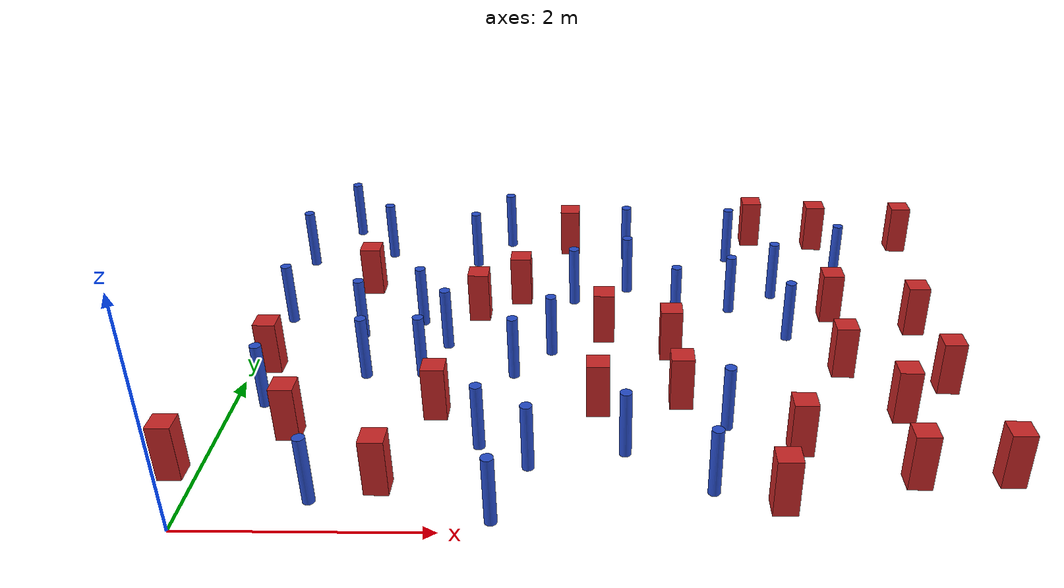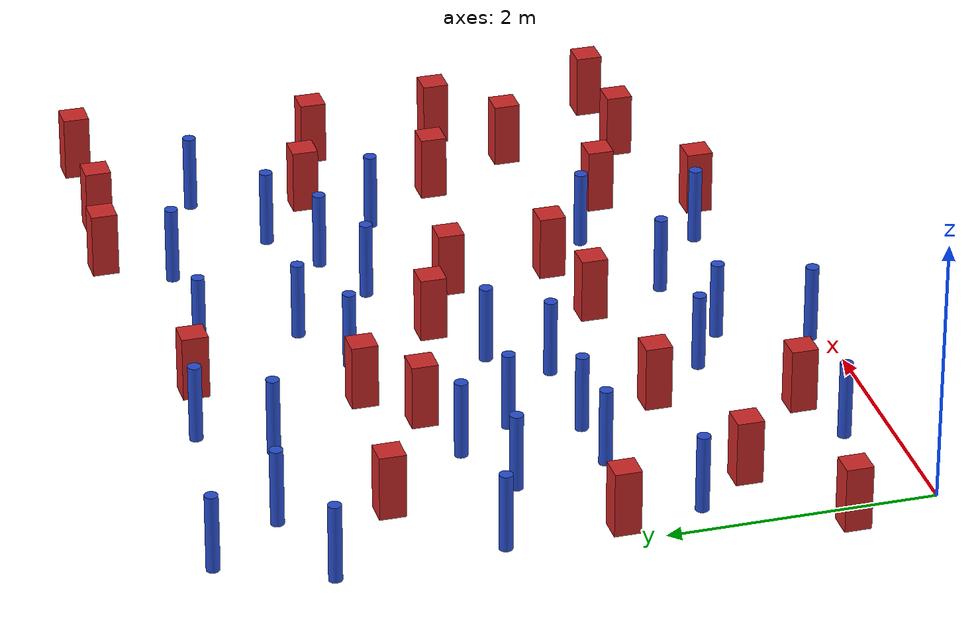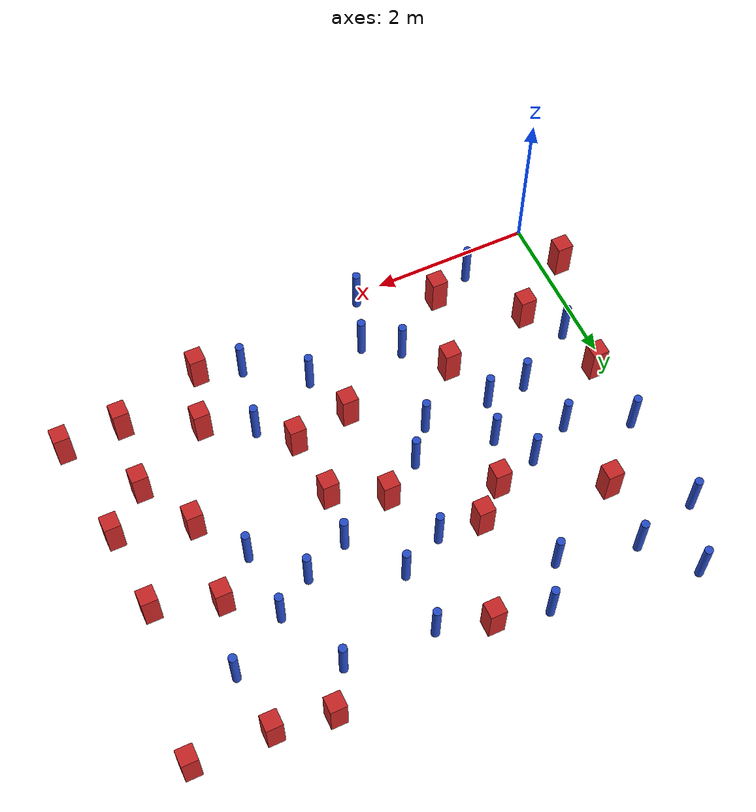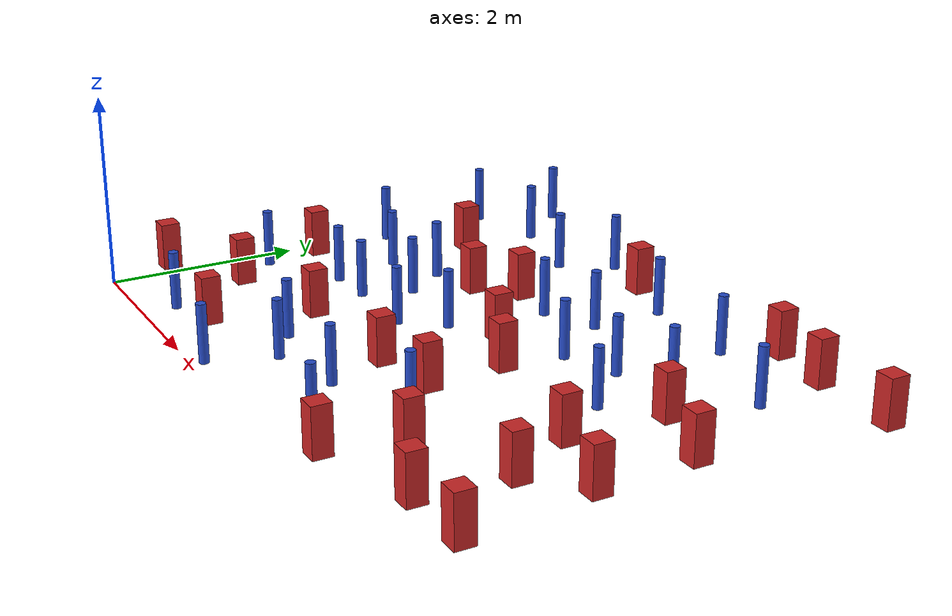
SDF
<sdf version="1.6">
 <model name="dense_33">
  <model name="square_post_obstacle0">
   <static>true</static>
   <pose>3.83624007222 2.51242688066 8.22691968438e-08 7.2212513382e-06 -7.54495500217e-07 2.29674213826e-05</pose>
   <link name="link">
    <pose>0 0 0.25 0 -0 0</pose>
    <inertial>
     <mass>100</mass>
     <inertia>
      <ixx>0.166667</ixx>
      <ixy>0</ixy>
      <ixz>0</ixz>
      <iyy>0.166667</iyy>
      <iyz>0</iyz>
      <izz>0.166667</izz>
     </inertia>
    </inertial>
    <collision name="collision"><geometry><box><size>.2 .2 .5</size></box></geometry></collision>
    <visual name="visual">
     <geometry><box><size>.2 .2 .5</size></box></geometry>
     <material>
      <script><name>Gazebo/Red</name><uri>file://media/materials/scripts/gazebo.material</uri></script>
     </material>
    </visual>
   </link>
  </model>
  <model name="square_post_obstacle2">
   <static>true</static>
   <pose>5.382815112 2.22522824394 8.22691968438e-08 7.2212513382e-06 -7.54495500217e-07 2.29674213826e-05</pose>
   <link name="link">
    <pose>0 0 0.25 0 -0 0</pose>
    <inertial>
     <mass>100</mass>
     <inertia>
      <ixx>0.166667</ixx>
      <ixy>0</ixy>
      <ixz>0</ixz>
      <iyy>0.166667</iyy>
      <iyz>0</iyz>
      <izz>0.166667</izz>
     </inertia>
    </inertial>
    <collision name="collision"><geometry><box><size>.2 .2 .5</size></box></geometry></collision>
    <visual name="visual">
     <geometry><box><size>.2 .2 .5</size></box></geometry>
     <material>
      <script><name>Gazebo/Red</name><uri>file://media/materials/scripts/gazebo.material</uri></script>
     </material>
    </visual>
   </link>
  </model>
  <model name="pole_obstacle2">
   <static>true</static>
   <pose>4.54405223998 4.48123757993 2.88873142074e-08 -9.90536690842e-09 4.60219948965e-07 -1.20965994976e-07</pose>
   <link name="link">
    <pose>0 0 0.3 0 -0 0</pose>
    <inertial>
     <mass>1</mass>
     <inertia><ixx>0.145833</ixx><ixy>0</ixy><ixz>0</ixz><iyy>0.145833</iyy><iyz>0</iyz><izz>0.125</izz></inertia>
    </inertial>
    <collision name="collision">
     <geometry><cylinder><radius>0.05</radius><length>.6</length></cylinder></geometry>
    </collision>
    <visual name="visual">
     <geometry><cylinder><radius>0.05</radius><length>.6</length></cylinder></geometry>
     <material>
      <script><name>Gazebo/Blue</name><uri>file://media/materials/scripts/gazebo.material</uri></script>
     </material>
    </visual>
   </link>
  </model>
  <model name="square_post_obstacle19">
   <static>true</static>
   <pose>4.84791716677 4.95255068701 8.22691968438e-08 7.2212513382e-06 -7.54495500217e-07 2.29674213826e-05</pose>
   <link name="link">
    <pose>0 0 0.25 0 -0 0</pose>
    <inertial>
     <mass>100</mass>
     <inertia>
      <ixx>0.166667</ixx>
      <ixy>0</ixy>
      <ixz>0</ixz>
      <iyy>0.166667</iyy>
      <iyz>0</iyz>
      <izz>0.166667</izz>
     </inertia>
    </inertial>
    <collision name="collision"><geometry><box><size>.2 .2 .5</size></box></geometry></collision>
    <visual name="visual">
     <geometry><box><size>.2 .2 .5</size></box></geometry>
     <material>
      <script><name>Gazebo/Red</name><uri>file://media/materials/scripts/gazebo.material</uri></script>
     </material>
    </visual>
   </link>
  </model>
  <model name="pole_obstacle12">
   <static>true</static>
   <pose>2.40385313394 2.13299145493 2.88873142074e-08 -9.90536690232e-09 4.6021994898e-07 -1.20965994968e-07</pose>
   <link name="link">
    <pose>0 0 0.3 0 -0 0</pose>
    <inertial>
     <mass>1</mass>
     <inertia><ixx>0.145833</ixx><ixy>0</ixy><ixz>0</ixz><iyy>0.145833</iyy><iyz>0</iyz><izz>0.125</izz></inertia>
    </inertial>
    <collision name="collision">
     <geometry><cylinder><radius>0.05</radius><length>.6</length></cylinder></geometry>
    </collision>
    <visual name="visual">
     <geometry><cylinder><radius>0.05</radius><length>.6</length></cylinder></geometry>
     <material>
      <script><name>Gazebo/Blue</name><uri>file://media/materials/scripts/gazebo.material</uri></script>
     </material>
    </visual>
   </link>
  </model>
  <model name="pole_obstacle23">
   <static>true</static>
   <pose>1.74170460834 2.64435976566 2.88873142074e-08 -9.90536689791e-09 4.6021994899e-07 -1.20965994959e-07</pose>
   <link name="link">
    <pose>0 0 0.3 0 -0 0</pose>
    <inertial>
     <mass>1</mass>
     <inertia><ixx>0.145833</ixx><ixy>0</ixy><ixz>0</ixz><iyy>0.145833</iyy><iyz>0</iyz><izz>0.125</izz></inertia>
    </inertial>
    <collision name="collision">
     <geometry><cylinder><radius>0.05</radius><length>.6</length></cylinder></geometry>
    </collision>
    <visual name="visual">
     <geometry><cylinder><radius>0.05</radius><length>.6</length></cylinder></geometry>
     <material>
      <script><name>Gazebo/Blue</name><uri>file://media/materials/scripts/gazebo.material</uri></script>
     </material>
    </visual>
   </link>
  </model>
  <model name="pole_obstacle35">
   <static>true</static>
   <pose>0.270229595099 1.65175155978 2.88873142074e-08 -9.90536689709e-09 4.60219948992e-07 -1.20965994957e-07</pose>
   <link name="link">
    <pose>0 0 0.3 0 -0 0</pose>
    <inertial>
     <mass>1</mass>
     <inertia><ixx>0.145833</ixx><ixy>0</ixy><ixz>0</ixz><iyy>0.145833</iyy><iyz>0</iyz><izz>0.125</izz></inertia>
    </inertial>
    <collision name="collision">
     <geometry><cylinder><radius>0.05</radius><length>.6</length></cylinder></geometry>
    </collision>
    <visual name="visual">
     <geometry><cylinder><radius>0.05</radius><length>.6</length></cylinder></geometry>
     <material>
      <script><name>Gazebo/Blue</name><uri>file://media/materials/scripts/gazebo.material</uri></script>
     </material>
    </visual>
   </link>
  </model>
  <model name="pole_obstacle36">
   <static>true</static>
   <pose>2.37809489842 0.126536309214 2.88873142074e-08 -9.90536689314e-09 4.60219949002e-07 -1.20965994953e-07</pose>
   <link name="link">
    <pose>0 0 0.3 0 -0 0</pose>
    <inertial>
     <mass>1</mass>
     <inertia><ixx>0.145833</ixx><ixy>0</ixy><ixz>0</ixz><iyy>0.145833</iyy><iyz>0</iyz><izz>0.125</izz></inertia>
    </inertial>
    <collision name="collision">
     <geometry><cylinder><radius>0.05</radius><length>.6</length></cylinder></geometry>
    </collision>
    <visual name="visual">
     <geometry><cylinder><radius>0.05</radius><length>.6</length></cylinder></geometry>
     <material>
      <script><name>Gazebo/Blue</name><uri>file://media/materials/scripts/gazebo.material</uri></script>
     </material>
    </visual>
   </link>
  </model>
  <model name="pole_obstacle42">
   <static>true</static>
   <pose>3.45222762329 4.52914695269 2.88873142074e-08 -9.90536689859e-09 4.60219948989e-07 -1.20965994961e-07</pose>
   <link name="link">
    <pose>0 0 0.3 0 -0 0</pose>
    <inertial>
     <mass>1</mass>
     <inertia><ixx>0.145833</ixx><ixy>0</ixy><ixz>0</ixz><iyy>0.145833</iyy><iyz>0</iyz><izz>0.125</izz></inertia>
    </inertial>
    <collision name="collision">
     <geometry><cylinder><radius>0.05</radius><length>.6</length></cylinder></geometry>
    </collision>
    <visual name="visual">
     <geometry><cylinder><radius>0.05</radius><length>.6</length></cylinder></geometry>
     <material>
      <script><name>Gazebo/Blue</name><uri>file://media/materials/scripts/gazebo.material</uri></script>
     </material>
    </visual>
   </link>
  </model>
  <model name="pole_obstacle49">
   <static>true</static>
   <pose>4.96978306461 2.81869666789 2.88873142074e-08 -9.90536690245e-09 4.6021994898e-07 -1.20965994966e-07</pose>
   <link name="link">
    <pose>0 0 0.3 0 -0 0</pose>
    <inertial>
     <mass>1</mass>
     <inertia><ixx>0.145833</ixx><ixy>0</ixy><ixz>0</ixz><iyy>0.145833</iyy><iyz>0</iyz><izz>0.125</izz></inertia>
    </inertial>
    <collision name="collision">
     <geometry><cylinder><radius>0.05</radius><length>.6</length></cylinder></geometry>
    </collision>
    <visual name="visual">
     <geometry><cylinder><radius>0.05</radius><length>.6</length></cylinder></geometry>
     <material>
      <script><name>Gazebo/Blue</name><uri>file://media/materials/scripts/gazebo.material</uri></script>
     </material>
    </visual>
   </link>
  </model>
  <model name="square_post_obstacle51">
   <static>true</static>
   <pose>3.16966110681 1.5908703172 8.22691968438e-08 7.2212513382e-06 -7.54495500217e-07 2.29674213826e-05</pose>
   <link name="link">
    <pose>0 0 0.25 0 -0 0</pose>
    <inertial>
     <mass>100</mass>
     <inertia>
      <ixx>0.166667</ixx>
      <ixy>0</ixy>
      <ixz>0</ixz>
      <iyy>0.166667</iyy>
      <iyz>0</iyz>
      <izz>0.166667</izz>
     </inertia>
    </inertial>
    <collision name="collision"><geometry><box><size>.2 .2 .5</size></box></geometry></collision>
    <visual name="visual">
     <geometry><box><size>.2 .2 .5</size></box></geometry>
     <material>
      <script><name>Gazebo/Red</name><uri>file://media/materials/scripts/gazebo.material</uri></script>
     </material>
    </visual>
   </link>
  </model>
  <model name="square_post_obstacle59">
   <static>true</static>
   <pose>2.38153384503 3.5671006401 8.22691968438e-08 7.2212513382e-06 -7.54495500217e-07 2.29674213826e-05</pose>
   <link name="link">
    <pose>0 0 0.25 0 -0 0</pose>
    <inertial>
     <mass>100</mass>
     <inertia>
      <ixx>0.166667</ixx>
      <ixy>0</ixy>
      <ixz>0</ixz>
      <iyy>0.166667</iyy>
      <iyz>0</iyz>
      <izz>0.166667</izz>
     </inertia>
    </inertial>
    <collision name="collision"><geometry><box><size>.2 .2 .5</size></box></geometry></collision>
    <visual name="visual">
     <geometry><box><size>.2 .2 .5</size></box></geometry>
     <material>
      <script><name>Gazebo/Red</name><uri>file://media/materials/scripts/gazebo.material</uri></script>
     </material>
    </visual>
   </link>
  </model>
  <model name="square_post_obstacle67">
   <static>true</static>
   <pose>0.180488321997 2.25615456702 8.22691968438e-08 7.2212513382e-06 -7.54495500217e-07 2.29674213826e-05</pose>
   <link name="link">
    <pose>0 0 0.25 0 -0 0</pose>
    <inertial>
     <mass>100</mass>
     <inertia>
      <ixx>0.166667</ixx>
      <ixy>0</ixy>
      <ixz>0</ixz>
      <iyy>0.166667</iyy>
      <iyz>0</iyz>
      <izz>0.166667</izz>
     </inertia>
    </inertial>
    <collision name="collision"><geometry><box><size>.2 .2 .5</size></box></geometry></collision>
    <visual name="visual">
     <geometry><box><size>.2 .2 .5</size></box></geometry>
     <material>
      <script><name>Gazebo/Red</name><uri>file://media/materials/scripts/gazebo.material</uri></script>
     </material>
    </visual>
   </link>
  </model>
  <model name="square_post_obstacle68">
   <static>true</static>
   <pose>5.53330720804 4.85079457492 8.22691968438e-08 7.2212513382e-06 -7.54495500217e-07 2.29674213826e-05</pose>
   <link name="link">
    <pose>0 0 0.25 0 -0 0</pose>
    <inertial>
     <mass>100</mass>
     <inertia>
      <ixx>0.166667</ixx>
      <ixy>0</ixy>
      <ixz>0</ixz>
      <iyy>0.166667</iyy>
      <iyz>0</iyz>
      <izz>0.166667</izz>
     </inertia>
    </inertial>
    <collision name="collision"><geometry><box><size>.2 .2 .5</size></box></geometry></collision>
    <visual name="visual">
     <geometry><box><size>.2 .2 .5</size></box></geometry>
     <material>
      <script><name>Gazebo/Red</name><uri>file://media/materials/scripts/gazebo.material</uri></script>
     </material>
    </visual>
   </link>
  </model>
  <model name="pole_obstacle73">
   <static>true</static>
   <pose>4.07469864643 0.484362611027 2.88873142074e-08 -9.90536689483e-09 4.60219948998e-07 -1.20965994956e-07</pose>
   <link name="link">
    <pose>0 0 0.3 0 -0 0</pose>
    <inertial>
     <mass>1</mass>
     <inertia><ixx>0.145833</ixx><ixy>0</ixy><ixz>0</ixz><iyy>0.145833</iyy><iyz>0</iyz><izz>0.125</izz></inertia>
    </inertial>
    <collision name="collision">
     <geometry><cylinder><radius>0.05</radius><length>.6</length></cylinder></geometry>
    </collision>
    <visual name="visual">
     <geometry><cylinder><radius>0.05</radius><length>.6</length></cylinder></geometry>
     <material>
      <script><name>Gazebo/Blue</name><uri>file://media/materials/scripts/gazebo.material</uri></script>
     </material>
    </visual>
   </link>
  </model>
  <model name="square_post_obstacle77">
   <static>true</static>
   <pose>1.78577934854 1.52558588114 8.22691968438e-08 7.2212513382e-06 -7.54495500217e-07 2.29674213826e-05</pose>
   <link name="link">
    <pose>0 0 0.25 0 -0 0</pose>
    <inertial>
     <mass>100</mass>
     <inertia>
      <ixx>0.166667</ixx>
      <ixy>0</ixy>
      <ixz>0</ixz>
      <iyy>0.166667</iyy>
      <iyz>0</iyz>
      <izz>0.166667</izz>
     </inertia>
    </inertial>
    <collision name="collision"><geometry><box><size>.2 .2 .5</size></box></geometry></collision>
    <visual name="visual">
     <geometry><box><size>.2 .2 .5</size></box></geometry>
     <material>
      <script><name>Gazebo/Red</name><uri>file://media/materials/scripts/gazebo.material</uri></script>
     </material>
    </visual>
   </link>
  </model>
  <model name="pole_obstacle81">
   <static>true</static>
   <pose>0.903990162992 2.82774440364 2.88873142074e-08 -9.90536689636e-09 4.60219948994e-07 -1.20965994958e-07</pose>
   <link name="link">
    <pose>0 0 0.3 0 -0 0</pose>
    <inertial>
     <mass>1</mass>
     <inertia><ixx>0.145833</ixx><ixy>0</ixy><ixz>0</ixz><iyy>0.145833</iyy><iyz>0</iyz><izz>0.125</izz></inertia>
    </inertial>
    <collision name="collision">
     <geometry><cylinder><radius>0.05</radius><length>.6</length></cylinder></geometry>
    </collision>
    <visual name="visual">
     <geometry><cylinder><radius>0.05</radius><length>.6</length></cylinder></geometry>
     <material>
      <script><name>Gazebo/Blue</name><uri>file://media/materials/scripts/gazebo.material</uri></script>
     </material>
    </visual>
   </link>
  </model>
  <model name="pole_obstacle86">
   <static>true</static>
   <pose>2.72855945239 2.5316916202 2.88873142074e-08 -9.90536690232e-09 4.6021994898e-07 -1.20965994968e-07</pose>
   <link name="link">
    <pose>0 0 0.3 0 -0 0</pose>
    <inertial>
     <mass>1</mass>
     <inertia><ixx>0.145833</ixx><ixy>0</ixy><ixz>0</ixz><iyy>0.145833</iyy><iyz>0</iyz><izz>0.125</izz></inertia>
    </inertial>
    <collision name="collision">
     <geometry><cylinder><radius>0.05</radius><length>.6</length></cylinder></geometry>
    </collision>
    <visual name="visual">
     <geometry><cylinder><radius>0.05</radius><length>.6</length></cylinder></geometry>
     <material>
      <script><name>Gazebo/Blue</name><uri>file://media/materials/scripts/gazebo.material</uri></script>
     </material>
    </visual>
   </link>
  </model>
  <model name="square_post_obstacle87">
   <static>true</static>
   <pose>0.839269014489 3.77222593982 8.22691968438e-08 7.2212513382e-06 -7.54495500217e-07 2.29674213826e-05</pose>
   <link name="link">
    <pose>0 0 0.25 0 -0 0</pose>
    <inertial>
     <mass>100</mass>
     <inertia>
      <ixx>0.166667</ixx>
      <ixy>0</ixy>
      <ixz>0</ixz>
      <iyy>0.166667</iyy>
      <iyz>0</iyz>
      <izz>0.166667</izz>
     </inertia>
    </inertial>
    <collision name="collision"><geometry><box><size>.2 .2 .5</size></box></geometry></collision>
    <visual name="visual">
     <geometry><box><size>.2 .2 .5</size></box></geometry>
     <material>
      <script><name>Gazebo/Red</name><uri>file://media/materials/scripts/gazebo.material</uri></script>
     </material>
    </visual>
   </link>
  </model>
  <model name="pole_obstacle98">
   <static>true</static>
   <pose>4.92634855674 3.65364517422 2.88873142074e-08 -9.90536690245e-09 4.6021994898e-07 -1.20965994966e-07</pose>
   <link name="link">
    <pose>0 0 0.3 0 -0 0</pose>
    <inertial>
     <mass>1</mass>
     <inertia><ixx>0.145833</ixx><ixy>0</ixy><ixz>0</ixz><iyy>0.145833</iyy><iyz>0</iyz><izz>0.125</izz></inertia>
    </inertial>
    <collision name="collision">
     <geometry><cylinder><radius>0.05</radius><length>.6</length></cylinder></geometry>
    </collision>
    <visual name="visual">
     <geometry><cylinder><radius>0.05</radius><length>.6</length></cylinder></geometry>
     <material>
      <script><name>Gazebo/Blue</name><uri>file://media/materials/scripts/gazebo.material</uri></script>
     </material>
    </visual>
   </link>
  </model>
  <model name="pole_obstacle103">
   <static>true</static>
   <pose>1.84891390113 4.35850790932 2.88873142074e-08 -9.90536689852e-09 4.60219948989e-07 -1.2096599496e-07</pose>
   <link name="link">
    <pose>0 0 0.3 0 -0 0</pose>
    <inertial>
     <mass>1</mass>
     <inertia><ixx>0.145833</ixx><ixy>0</ixy><ixz>0</ixz><iyy>0.145833</iyy><iyz>0</iyz><izz>0.125</izz></inertia>
    </inertial>
    <collision name="collision">
     <geometry><cylinder><radius>0.05</radius><length>.6</length></cylinder></geometry>
    </collision>
    <visual name="visual">
     <geometry><cylinder><radius>0.05</radius><length>.6</length></cylinder></geometry>
     <material>
      <script><name>Gazebo/Blue</name><uri>file://media/materials/scripts/gazebo.material</uri></script>
     </material>
    </visual>
   </link>
  </model>
  <model name="pole_obstacle108">
   <static>true</static>
   <pose>0.42959844071 5.14114575836 2.88873142074e-08 -9.90536689683e-09 4.60219948993e-07 -1.20965994957e-07</pose>
   <link name="link">
    <pose>0 0 0.3 0 -0 0</pose>
    <inertial>
     <mass>1</mass>
     <inertia><ixx>0.145833</ixx><ixy>0</ixy><ixz>0</ixz><iyy>0.145833</iyy><iyz>0</iyz><izz>0.125</izz></inertia>
    </inertial>
    <collision name="collision">
     <geometry><cylinder><radius>0.05</radius><length>.6</length></cylinder></geometry>
    </collision>
    <visual name="visual">
     <geometry><cylinder><radius>0.05</radius><length>.6</length></cylinder></geometry>
     <material>
      <script><name>Gazebo/Blue</name><uri>file://media/materials/scripts/gazebo.material</uri></script>
     </material>
    </visual>
   </link>
  </model>
  <model name="square_post_obstacle97">
   <static>true</static>
   <pose>3.88833576552 1.70321799984 8.22691968438e-08 7.2212513382e-06 -7.54495500217e-07 2.29674213826e-05</pose>
   <link name="link">
    <pose>0 0 0.25 0 -0 0</pose>
    <inertial>
     <mass>100</mass>
     <inertia>
      <ixx>0.166667</ixx>
      <ixy>0</ixy>
      <ixz>0</ixz>
      <iyy>0.166667</iyy>
      <iyz>0</iyz>
      <izz>0.166667</izz>
     </inertia>
    </inertial>
    <collision name="collision"><geometry><box><size>.2 .2 .5</size></box></geometry></collision>
    <visual name="visual">
     <geometry><box><size>.2 .2 .5</size></box></geometry>
     <material>
      <script><name>Gazebo/Red</name><uri>file://media/materials/scripts/gazebo.material</uri></script>
     </material>
    </visual>
   </link>
  </model>
  <model name="pole_obstacle110">
   <static>true</static>
   <pose>3.91531271678 3.13103008259 2.88873142074e-08 -9.90536690232e-09 4.6021994898e-07 -1.20965994968e-07</pose>
   <link name="link">
    <pose>0 0 0.3 0 -0 0</pose>
    <inertial>
     <mass>1</mass>
     <inertia><ixx>0.145833</ixx><ixy>0</ixy><ixz>0</ixz><iyy>0.145833</iyy><iyz>0</iyz><izz>0.125</izz></inertia>
    </inertial>
    <collision name="collision">
     <geometry><cylinder><radius>0.05</radius><length>.6</length></cylinder></geometry>
    </collision>
    <visual name="visual">
     <geometry><cylinder><radius>0.05</radius><length>.6</length></cylinder></geometry>
     <material>
      <script><name>Gazebo/Blue</name><uri>file://media/materials/scripts/gazebo.material</uri></script>
     </material>
    </visual>
   </link>
  </model>
  <model name="pole_obstacle117">
   <static>true</static>
   <pose>1.44780550081 3.08012326872 2.88873142074e-08 -9.90536689791e-09 4.6021994899e-07 -1.20965994959e-07</pose>
   <link name="link">
    <pose>0 0 0.3 0 -0 0</pose>
    <inertial>
     <mass>1</mass>
     <inertia><ixx>0.145833</ixx><ixy>0</ixy><ixz>0</ixz><iyy>0.145833</iyy><iyz>0</iyz><izz>0.125</izz></inertia>
    </inertial>
    <collision name="collision">
     <geometry><cylinder><radius>0.05</radius><length>.6</length></cylinder></geometry>
    </collision>
    <visual name="visual">
     <geometry><cylinder><radius>0.05</radius><length>.6</length></cylinder></geometry>
     <material>
      <script><name>Gazebo/Blue</name><uri>file://media/materials/scripts/gazebo.material</uri></script>
     </material>
    </visual>
   </link>
  </model>
  <model name="square_post_obstacle113">
   <static>true</static>
   <pose>6.26256643777 1.96622092662 8.22691968438e-08 7.2212513382e-06 -7.54495500217e-07 2.29674213826e-05</pose>
   <link name="link">
    <pose>0 0 0.25 0 -0 0</pose>
    <inertial>
     <mass>100</mass>
     <inertia>
      <ixx>0.166667</ixx>
      <ixy>0</ixy>
      <ixz>0</ixz>
      <iyy>0.166667</iyy>
      <iyz>0</iyz>
      <izz>0.166667</izz>
     </inertia>
    </inertial>
    <collision name="collision"><geometry><box><size>.2 .2 .5</size></box></geometry></collision>
    <visual name="visual">
     <geometry><box><size>.2 .2 .5</size></box></geometry>
     <material>
      <script><name>Gazebo/Red</name><uri>file://media/materials/scripts/gazebo.material</uri></script>
     </material>
    </visual>
   </link>
  </model>
  <model name="pole_obstacle128">
   <static>true</static>
   <pose>5.64203505612 4.08700018968 2.88873142074e-08 -9.90536690842e-09 4.60219948965e-07 -1.20965994976e-07</pose>
   <link name="link">
    <pose>0 0 0.3 0 -0 0</pose>
    <inertial>
     <mass>1</mass>
     <inertia><ixx>0.145833</ixx><ixy>0</ixy><ixz>0</ixz><iyy>0.145833</iyy><iyz>0</iyz><izz>0.125</izz></inertia>
    </inertial>
    <collision name="collision">
     <geometry><cylinder><radius>0.05</radius><length>.6</length></cylinder></geometry>
    </collision>
    <visual name="visual">
     <geometry><cylinder><radius>0.05</radius><length>.6</length></cylinder></geometry>
     <material>
      <script><name>Gazebo/Blue</name><uri>file://media/materials/scripts/gazebo.material</uri></script>
     </material>
    </visual>
   </link>
  </model>
  <model name="square_post_obstacle114">
   <static>true</static>
   <pose>6.46413071267 4.8251905256 8.22691968438e-08 7.2212513382e-06 -7.54495500217e-07 2.29674213826e-05</pose>
   <link name="link">
    <pose>0 0 0.25 0 -0 0</pose>
    <inertial>
     <mass>100</mass>
     <inertia>
      <ixx>0.166667</ixx>
      <ixy>0</ixy>
      <ixz>0</ixz>
      <iyy>0.166667</iyy>
      <iyz>0</iyz>
      <izz>0.166667</izz>
     </inertia>
    </inertial>
    <collision name="collision"><geometry><box><size>.2 .2 .5</size></box></geometry></collision>
    <visual name="visual">
     <geometry><box><size>.2 .2 .5</size></box></geometry>
     <material>
      <script><name>Gazebo/Red</name><uri>file://media/materials/scripts/gazebo.material</uri></script>
     </material>
    </visual>
   </link>
  </model>
  <model name="pole_obstacle130">
   <static>true</static>
   <pose>2.19633119858 1.05908401135 2.88873142074e-08 -9.90536689395e-09 4.60219949e-07 -1.20965994953e-07</pose>
   <link name="link">
    <pose>0 0 0.3 0 -0 0</pose>
    <inertial>
     <mass>1</mass>
     <inertia><ixx>0.145833</ixx><ixy>0</ixy><ixz>0</ixz><iyy>0.145833</iyy><iyz>0</iyz><izz>0.125</izz></inertia>
    </inertial>
    <collision name="collision">
     <geometry><cylinder><radius>0.05</radius><length>.6</length></cylinder></geometry>
    </collision>
    <visual name="visual">
     <geometry><cylinder><radius>0.05</radius><length>.6</length></cylinder></geometry>
     <material>
      <script><name>Gazebo/Blue</name><uri>file://media/materials/scripts/gazebo.material</uri></script>
     </material>
    </visual>
   </link>
  </model>
  <model name="square_post_obstacle115">
   <static>true</static>
   <pose>6.20726638023 2.98246089201 8.22691968438e-08 7.2212513382e-06 -7.54495500217e-07 2.29674213826e-05</pose>
   <link name="link">
    <pose>0 0 0.25 0 -0 0</pose>
    <inertial>
     <mass>100</mass>
     <inertia>
      <ixx>0.166667</ixx>
      <ixy>0</ixy>
      <ixz>0</ixz>
      <iyy>0.166667</iyy>
      <iyz>0</iyz>
      <izz>0.166667</izz>
     </inertia>
    </inertial>
    <collision name="collision"><geometry><box><size>.2 .2 .5</size></box></geometry></collision>
    <visual name="visual">
     <geometry><box><size>.2 .2 .5</size></box></geometry>
     <material>
      <script><name>Gazebo/Red</name><uri>file://media/materials/scripts/gazebo.material</uri></script>
     </material>
    </visual>
   </link>
  </model>
  <model name="square_post_obstacle134">
   <static>true</static>
   <pose>4.82399494446 1.03815677405 8.22691968438e-08 7.2212513382e-06 -7.54495500217e-07 2.29674213826e-05</pose>
   <link name="link">
    <pose>0 0 0.25 0 -0 0</pose>
    <inertial>
     <mass>100</mass>
     <inertia>
      <ixx>0.166667</ixx>
      <ixy>0</ixy>
      <ixz>0</ixz>
      <iyy>0.166667</iyy>
      <iyz>0</iyz>
      <izz>0.166667</izz>
     </inertia>
    </inertial>
    <collision name="collision"><geometry><box><size>.2 .2 .5</size></box></geometry></collision>
    <visual name="visual">
     <geometry><box><size>.2 .2 .5</size></box></geometry>
     <material>
      <script><name>Gazebo/Red</name><uri>file://media/materials/scripts/gazebo.material</uri></script>
     </material>
    </visual>
   </link>
  </model>
  <model name="pole_obstacle145">
   <static>true</static>
   <pose>3.45163261709 3.77494347246 2.88873142074e-08 -9.90536690232e-09 4.6021994898e-07 -1.20965994968e-07</pose>
   <link name="link">
    <pose>0 0 0.3 0 -0 0</pose>
    <inertial>
     <mass>1</mass>
     <inertia><ixx>0.145833</ixx><ixy>0</ixy><ixz>0</ixz><iyy>0.145833</iyy><iyz>0</iyz><izz>0.125</izz></inertia>
    </inertial>
    <collision name="collision">
     <geometry><cylinder><radius>0.05</radius><length>.6</length></cylinder></geometry>
    </collision>
    <visual name="visual">
     <geometry><cylinder><radius>0.05</radius><length>.6</length></cylinder></geometry>
     <material>
      <script><name>Gazebo/Blue</name><uri>file://media/materials/scripts/gazebo.material</uri></script>
     </material>
    </visual>
   </link>
  </model>
  <model name="pole_obstacle156">
   <static>true</static>
   <pose>0.146905843867 3.12225252958 2.88873142074e-08 -9.90536692387e-09 4.60219948929e-07 -1.20965994988e-07</pose>
   <link name="link">
    <pose>0 0 0.3 0 -0 0</pose>
    <inertial>
     <mass>1</mass>
     <inertia><ixx>0.145833</ixx><ixy>0</ixy><ixz>0</ixz><iyy>0.145833</iyy><iyz>0</iyz><izz>0.125</izz></inertia>
    </inertial>
    <collision name="collision">
     <geometry><cylinder><radius>0.05</radius><length>.6</length></cylinder></geometry>
    </collision>
    <visual name="visual">
     <geometry><cylinder><radius>0.05</radius><length>.6</length></cylinder></geometry>
     <material>
      <script><name>Gazebo/Blue</name><uri>file://media/materials/scripts/gazebo.material</uri></script>
     </material>
    </visual>
   </link>
  </model>
  <model name="square_post_obstacle149">
   <static>true</static>
   <pose>4.58742224713 0.311804804169 8.22691968438e-08 7.2212513382e-06 -7.54495500217e-07 2.29674213826e-05</pose>
   <link name="link">
    <pose>0 0 0.25 0 -0 0</pose>
    <inertial>
     <mass>100</mass>
     <inertia>
      <ixx>0.166667</ixx>
      <ixy>0</ixy>
      <ixz>0</ixz>
      <iyy>0.166667</iyy>
      <iyz>0</iyz>
      <izz>0.166667</izz>
     </inertia>
    </inertial>
    <collision name="collision"><geometry><box><size>.2 .2 .5</size></box></geometry></collision>
    <visual name="visual">
     <geometry><box><size>.2 .2 .5</size></box></geometry>
     <material>
      <script><name>Gazebo/Red</name><uri>file://media/materials/scripts/gazebo.material</uri></script>
     </material>
    </visual>
   </link>
  </model>
  <model name="square_post_obstacle153">
   <static>true</static>
   <pose>1.46635950178 0.523437475604 8.22691968438e-08 7.22125133819e-06 -7.54495500217e-07 2.29674213826e-05</pose>
   <link name="link">
    <pose>0 0 0.25 0 -0 0</pose>
    <inertial>
     <mass>100</mass>
     <inertia>
      <ixx>0.166667</ixx>
      <ixy>0</ixy>
      <ixz>0</ixz>
      <iyy>0.166667</iyy>
      <iyz>0</iyz>
      <izz>0.166667</izz>
     </inertia>
    </inertial>
    <collision name="collision"><geometry><box><size>.2 .2 .5</size></box></geometry></collision>
    <visual name="visual">
     <geometry><box><size>.2 .2 .5</size></box></geometry>
     <material>
      <script><name>Gazebo/Red</name><uri>file://media/materials/scripts/gazebo.material</uri></script>
     </material>
    </visual>
   </link>
  </model>
  <model name="pole_obstacle162">
   <static>true</static>
   <pose>0.963282266873 0.354120849791 2.88873142074e-08 -9.90536689826e-09 4.6021994899e-07 -1.2096599496e-07</pose>
   <link name="link">
    <pose>0 0 0.3 0 -0 0</pose>
    <inertial>
     <mass>1</mass>
     <inertia><ixx>0.145833</ixx><ixy>0</ixy><ixz>0</ixz><iyy>0.145833</iyy><iyz>0</iyz><izz>0.125</izz></inertia>
    </inertial>
    <collision name="collision">
     <geometry><cylinder><radius>0.05</radius><length>.6</length></cylinder></geometry>
    </collision>
    <visual name="visual">
     <geometry><cylinder><radius>0.05</radius><length>.6</length></cylinder></geometry>
     <material>
      <script><name>Gazebo/Blue</name><uri>file://media/materials/scripts/gazebo.material</uri></script>
     </material>
    </visual>
   </link>
  </model>
  <model name="square_post_obstacle155">
   <static>true</static>
   <pose>3.21469308663 2.82212066429 8.22691968438e-08 7.2212513382e-06 -7.54495500217e-07 2.29674213826e-05</pose>
   <link name="link">
    <pose>0 0 0.25 0 -0 0</pose>
    <inertial>
     <mass>100</mass>
     <inertia>
      <ixx>0.166667</ixx>
      <ixy>0</ixy>
      <ixz>0</ixz>
      <iyy>0.166667</iyy>
      <iyz>0</iyz>
      <izz>0.166667</izz>
     </inertia>
    </inertial>
    <collision name="collision"><geometry><box><size>.2 .2 .5</size></box></geometry></collision>
    <visual name="visual">
     <geometry><box><size>.2 .2 .5</size></box></geometry>
     <material>
      <script><name>Gazebo/Red</name><uri>file://media/materials/scripts/gazebo.material</uri></script>
     </material>
    </visual>
   </link>
  </model>
  <model name="pole_obstacle167">
   <static>true</static>
   <pose>0.897670462561 4.56794282939 2.88873142074e-08 -9.90536689661e-09 4.60219948993e-07 -1.20965994957e-07</pose>
   <link name="link">
    <pose>0 0 0.3 0 -0 0</pose>
    <inertial>
     <mass>1</mass>
     <inertia><ixx>0.145833</ixx><ixy>0</ixy><ixz>0</ixz><iyy>0.145833</iyy><iyz>0</iyz><izz>0.125</izz></inertia>
    </inertial>
    <collision name="collision">
     <geometry><cylinder><radius>0.05</radius><length>.6</length></cylinder></geometry>
    </collision>
    <visual name="visual">
     <geometry><cylinder><radius>0.05</radius><length>.6</length></cylinder></geometry>
     <material>
      <script><name>Gazebo/Blue</name><uri>file://media/materials/scripts/gazebo.material</uri></script>
     </material>
    </visual>
   </link>
  </model>
  <model name="square_post_obstacle166">
   <static>true</static>
   <pose>6.40855223879 0.653127847394 8.22691968438e-08 7.2212513382e-06 -7.54495500217e-07 2.29674213826e-05</pose>
   <link name="link">
    <pose>0 0 0.25 0 -0 0</pose>
    <inertial>
     <mass>100</mass>
     <inertia>
      <ixx>0.166667</ixx>
      <ixy>0</ixy>
      <ixz>0</ixz>
      <iyy>0.166667</iyy>
      <iyz>0</iyz>
      <izz>0.166667</izz>
     </inertia>
    </inertial>
    <collision name="collision"><geometry><box><size>.2 .2 .5</size></box></geometry></collision>
    <visual name="visual">
     <geometry><box><size>.2 .2 .5</size></box></geometry>
     <material>
      <script><name>Gazebo/Red</name><uri>file://media/materials/scripts/gazebo.material</uri></script>
     </material>
    </visual>
   </link>
  </model>
  <model name="square_post_obstacle168">
   <static>true</static>
   <pose>5.76988013364 1.51987353903 8.22691968438e-08 7.2212513382e-06 -7.54495500217e-07 2.29674213826e-05</pose>
   <link name="link">
    <pose>0 0 0.25 0 -0 0</pose>
    <inertial>
     <mass>100</mass>
     <inertia>
      <ixx>0.166667</ixx>
      <ixy>0</ixy>
      <ixz>0</ixz>
      <iyy>0.166667</iyy>
      <iyz>0</iyz>
      <izz>0.166667</izz>
     </inertia>
    </inertial>
    <collision name="collision"><geometry><box><size>.2 .2 .5</size></box></geometry></collision>
    <visual name="visual">
     <geometry><box><size>.2 .2 .5</size></box></geometry>
     <material>
      <script><name>Gazebo/Red</name><uri>file://media/materials/scripts/gazebo.material</uri></script>
     </material>
    </visual>
   </link>
  </model>
  <model name="square_post_obstacle169">
   <static>true</static>
   <pose>2.84172451435 4.716648273 8.22691968438e-08 7.2212513382e-06 -7.54495500217e-07 2.29674213826e-05</pose>
   <link name="link">
    <pose>0 0 0.25 0 -0 0</pose>
    <inertial>
     <mass>100</mass>
     <inertia>
      <ixx>0.166667</ixx>
      <ixy>0</ixy>
      <ixz>0</ixz>
      <iyy>0.166667</iyy>
      <iyz>0</iyz>
      <izz>0.166667</izz>
     </inertia>
    </inertial>
    <collision name="collision"><geometry><box><size>.2 .2 .5</size></box></geometry></collision>
    <visual name="visual">
     <geometry><box><size>.2 .2 .5</size></box></geometry>
     <material>
      <script><name>Gazebo/Red</name><uri>file://media/materials/scripts/gazebo.material</uri></script>
     </material>
    </visual>
   </link>
  </model>
  <model name="square_post_obstacle174">
   <static>true</static>
   <pose>5.44296839167 3.23845282231 8.22691968438e-08 7.2212513382e-06 -7.54495500217e-07 2.29674213826e-05</pose>
   <link name="link">
    <pose>0 0 0.25 0 -0 0</pose>
    <inertial>
     <mass>100</mass>
     <inertia>
      <ixx>0.166667</ixx>
      <ixy>0</ixy>
      <ixz>0</ixz>
      <iyy>0.166667</iyy>
      <iyz>0</iyz>
      <izz>0.166667</izz>
     </inertia>
    </inertial>
    <collision name="collision"><geometry><box><size>.2 .2 .5</size></box></geometry></collision>
    <visual name="visual">
     <geometry><box><size>.2 .2 .5</size></box></geometry>
     <material>
      <script><name>Gazebo/Red</name><uri>file://media/materials/scripts/gazebo.material</uri></script>
     </material>
    </visual>
   </link>
  </model>
  <model name="square_post_obstacle181">
   <static>true</static>
   <pose>5.67575521087 0.626333127229 8.22691968438e-08 7.2212513382e-06 -7.54495500217e-07 2.29674213826e-05</pose>
   <link name="link">
    <pose>0 0 0.25 0 -0 0</pose>
    <inertial>
     <mass>100</mass>
     <inertia>
      <ixx>0.166667</ixx>
      <ixy>0</ixy>
      <ixz>0</ixz>
      <iyy>0.166667</iyy>
      <iyz>0</iyz>
      <izz>0.166667</izz>
     </inertia>
    </inertial>
    <collision name="collision"><geometry><box><size>.2 .2 .5</size></box></geometry></collision>
    <visual name="visual">
     <geometry><box><size>.2 .2 .5</size></box></geometry>
     <material>
      <script><name>Gazebo/Red</name><uri>file://media/materials/scripts/gazebo.material</uri></script>
     </material>
    </visual>
   </link>
  </model>
  <model name="square_post_obstacle194">
   <static>true</static>
   <pose>0.602779647062 1.22331312828 8.22691968438e-08 7.2212513382e-06 -7.54495500217e-07 2.29674213826e-05</pose>
   <link name="link">
    <pose>0 0 0.25 0 -0 0</pose>
    <inertial>
     <mass>100</mass>
     <inertia>
      <ixx>0.166667</ixx>
      <ixy>0</ixy>
      <ixz>0</ixz>
      <iyy>0.166667</iyy>
      <iyz>0</iyz>
      <izz>0.166667</izz>
     </inertia>
    </inertial>
    <collision name="collision"><geometry><box><size>.2 .2 .5</size></box></geometry></collision>
    <visual name="visual">
     <geometry><box><size>.2 .2 .5</size></box></geometry>
     <material>
      <script><name>Gazebo/Red</name><uri>file://media/materials/scripts/gazebo.material</uri></script>
     </material>
    </visual>
   </link>
  </model>
  <model name="square_post_obstacle196">
   <static>true</static>
   <pose>-0.196760557996 0.691597295607 8.22691968438e-08 7.2212513382e-06 -7.54495500217e-07 2.29674213826e-05</pose>
   <link name="link">
    <pose>0 0 0.25 0 -0 0</pose>
    <inertial>
     <mass>100</mass>
     <inertia>
      <ixx>0.166667</ixx>
      <ixy>0</ixy>
      <ixz>0</ixz>
      <iyy>0.166667</iyy>
      <iyz>0</iyz>
      <izz>0.166667</izz>
     </inertia>
    </inertial>
    <collision name="collision"><geometry><box><size>.2 .2 .5</size></box></geometry></collision>
    <visual name="visual">
     <geometry><box><size>.2 .2 .5</size></box></geometry>
     <material>
      <script><name>Gazebo/Red</name><uri>file://media/materials/scripts/gazebo.material</uri></script>
     </material>
    </visual>
   </link>
  </model>
  <model name="square_post_obstacle203">
   <static>true</static>
   <pose>1.99245065834 3.22249709164 8.22691968438e-08 7.2212513382e-06 -7.54495500217e-07 2.29674213826e-05</pose>
   <link name="link">
    <pose>0 0 0.25 0 -0 0</pose>
    <inertial>
     <mass>100</mass>
     <inertia>
      <ixx>0.166667</ixx>
      <ixy>0</ixy>
      <ixz>0</ixz>
      <iyy>0.166667</iyy>
      <iyz>0</iyz>
      <izz>0.166667</izz>
     </inertia>
    </inertial>
    <collision name="collision"><geometry><box><size>.2 .2 .5</size></box></geometry></collision>
    <visual name="visual">
     <geometry><box><size>.2 .2 .5</size></box></geometry>
     <material>
      <script><name>Gazebo/Red</name><uri>file://media/materials/scripts/gazebo.material</uri></script>
     </material>
    </visual>
   </link>
  </model>
  <model name="pole_obstacle192">
   <static>true</static>
   <pose>2.61573142482 0.784771002208 2.88873142074e-08 -9.90536689285e-09 4.60219949002e-07 -1.20965994953e-07</pose>
   <link name="link">
    <pose>0 0 0.3 0 -0 0</pose>
    <inertial>
     <mass>1</mass>
     <inertia><ixx>0.145833</ixx><ixy>0</ixy><ixz>0</ixz><iyy>0.145833</iyy><iyz>0</iyz><izz>0.125</izz></inertia>
    </inertial>
    <collision name="collision">
     <geometry><cylinder><radius>0.05</radius><length>.6</length></cylinder></geometry>
    </collision>
    <visual name="visual">
     <geometry><cylinder><radius>0.05</radius><length>.6</length></cylinder></geometry>
     <material>
      <script><name>Gazebo/Blue</name><uri>file://media/materials/scripts/gazebo.material</uri></script>
     </material>
    </visual>
   </link>
  </model>
  <model name="pole_obstacle197">
   <static>true</static>
   <pose>4.2555092108 1.34433406465 2.88873142074e-08 -9.90536689445e-09 4.60219948999e-07 -1.20965994956e-07</pose>
   <link name="link">
    <pose>0 0 0.3 0 -0 0</pose>
    <inertial>
     <mass>1</mass>
     <inertia><ixx>0.145833</ixx><ixy>0</ixy><ixz>0</ixz><iyy>0.145833</iyy><iyz>0</iyz><izz>0.125</izz></inertia>
    </inertial>
    <collision name="collision">
     <geometry><cylinder><radius>0.05</radius><length>.6</length></cylinder></geometry>
    </collision>
    <visual name="visual">
     <geometry><cylinder><radius>0.05</radius><length>.6</length></cylinder></geometry>
     <material>
      <script><name>Gazebo/Blue</name><uri>file://media/materials/scripts/gazebo.material</uri></script>
     </material>
    </visual>
   </link>
  </model>
  <model name="pole_obstacle198">
   <static>true</static>
   <pose>1.0644691967 2.11913512776 2.88873142074e-08 -9.90536689791e-09 4.6021994899e-07 -1.20965994959e-07</pose>
   <link name="link">
    <pose>0 0 0.3 0 -0 0</pose>
    <inertial>
     <mass>1</mass>
     <inertia><ixx>0.145833</ixx><ixy>0</ixy><ixz>0</ixz><iyy>0.145833</iyy><iyz>0</iyz><izz>0.125</izz></inertia>
    </inertial>
    <collision name="collision">
     <geometry><cylinder><radius>0.05</radius><length>.6</length></cylinder></geometry>
    </collision>
    <visual name="visual">
     <geometry><cylinder><radius>0.05</radius><length>.6</length></cylinder></geometry>
     <material>
      <script><name>Gazebo/Blue</name><uri>file://media/materials/scripts/gazebo.material</uri></script>
     </material>
    </visual>
   </link>
  </model>
  <model name="pole_obstacle200">
   <static>true</static>
   <pose>4.46545848802 3.35348977989 2.88873142074e-08 -9.90536690245e-09 4.6021994898e-07 -1.20965994966e-07</pose>
   <link name="link">
    <pose>0 0 0.3 0 -0 0</pose>
    <inertial>
     <mass>1</mass>
     <inertia><ixx>0.145833</ixx><ixy>0</ixy><ixz>0</ixz><iyy>0.145833</iyy><iyz>0</iyz><izz>0.125</izz></inertia>
    </inertial>
    <collision name="collision">
     <geometry><cylinder><radius>0.05</radius><length>.6</length></cylinder></geometry>
    </collision>
    <visual name="visual">
     <geometry><cylinder><radius>0.05</radius><length>.6</length></cylinder></geometry>
     <material>
      <script><name>Gazebo/Blue</name><uri>file://media/materials/scripts/gazebo.material</uri></script>
     </material>
    </visual>
   </link>
  </model>
  <model name="pole_obstacle205">
   <static>true</static>
   <pose>2.18400230949 4.85051122308 2.88873142074e-08 -9.90536689859e-09 4.60219948989e-07 -1.20965994961e-07</pose>
   <link name="link">
    <pose>0 0 0.3 0 -0 0</pose>
    <inertial>
     <mass>1</mass>
     <inertia><ixx>0.145833</ixx><ixy>0</ixy><ixz>0</ixz><iyy>0.145833</iyy><iyz>0</iyz><izz>0.125</izz></inertia>
    </inertial>
    <collision name="collision">
     <geometry><cylinder><radius>0.05</radius><length>.6</length></cylinder></geometry>
    </collision>
    <visual name="visual">
     <geometry><cylinder><radius>0.05</radius><length>.6</length></cylinder></geometry>
     <material>
      <script><name>Gazebo/Blue</name><uri>file://media/materials/scripts/gazebo.material</uri></script>
     </material>
    </visual>
   </link>
  </model>
  <model name="pole_obstacle206">
   <static>true</static>
   <pose>2.91502409371 3.52025512457 2.88873142074e-08 -9.90536690232e-09 4.6021994898e-07 -1.20965994968e-07</pose>
   <link name="link">
    <pose>0 0 0.3 0 -0 0</pose>
    <inertial>
     <mass>1</mass>
     <inertia><ixx>0.145833</ixx><ixy>0</ixy><ixz>0</ixz><iyy>0.145833</iyy><iyz>0</iyz><izz>0.125</izz></inertia>
    </inertial>
    <collision name="collision">
     <geometry><cylinder><radius>0.05</radius><length>.6</length></cylinder></geometry>
    </collision>
    <visual name="visual">
     <geometry><cylinder><radius>0.05</radius><length>.6</length></cylinder></geometry>
     <material>
      <script><name>Gazebo/Blue</name><uri>file://media/materials/scripts/gazebo.material</uri></script>
     </material>
    </visual>
   </link>
  </model>
  <model name="pole_obstacle213">
   <static>true</static>
   <pose>0.0754246066438 4.3603700717 2.88873142074e-08 -9.90536689742e-09 4.60219948992e-07 -1.2096599496e-07</pose>
   <link name="link">
    <pose>0 0 0.3 0 -0 0</pose>
    <inertial>
     <mass>1</mass>
     <inertia><ixx>0.145833</ixx><ixy>0</ixy><ixz>0</ixz><iyy>0.145833</iyy><iyz>0</iyz><izz>0.125</izz></inertia>
    </inertial>
    <collision name="collision">
     <geometry><cylinder><radius>0.05</radius><length>.6</length></cylinder></geometry>
    </collision>
    <visual name="visual">
     <geometry><cylinder><radius>0.05</radius><length>.6</length></cylinder></geometry>
     <material>
      <script><name>Gazebo/Blue</name><uri>file://media/materials/scripts/gazebo.material</uri></script>
     </material>
    </visual>
   </link>
  </model>
  <model name="pole_obstacle214">
   <static>true</static>
   <pose>1.56987126901 2.14363411501 2.88873142074e-08 -9.90536689791e-09 4.6021994899e-07 -1.20965994959e-07</pose>
   <link name="link">
    <pose>0 0 0.3 0 -0 0</pose>
    <inertial>
     <mass>1</mass>
     <inertia><ixx>0.145833</ixx><ixy>0</ixy><ixz>0</ixz><iyy>0.145833</iyy><iyz>0</iyz><izz>0.125</izz></inertia>
    </inertial>
    <collision name="collision">
     <geometry><cylinder><radius>0.05</radius><length>.6</length></cylinder></geometry>
    </collision>
    <visual name="visual">
     <geometry><cylinder><radius>0.05</radius><length>.6</length></cylinder></geometry>
     <material>
      <script><name>Gazebo/Blue</name><uri>file://media/materials/scripts/gazebo.material</uri></script>
     </material>
    </visual>
   </link>
  </model>
  <model name="pole_obstacle221">
   <static>true</static>
   <pose>3.39392791048 0.973931104204 2.88873142074e-08 -9.90536689701e-09 4.60219948992e-07 -1.20965994959e-07</pose>
   <link name="link">
    <pose>0 0 0.3 0 -0 0</pose>
    <inertial>
     <mass>1</mass>
     <inertia><ixx>0.145833</ixx><ixy>0</ixy><ixz>0</ixz><iyy>0.145833</iyy><iyz>0</iyz><izz>0.125</izz></inertia>
    </inertial>
    <collision name="collision">
     <geometry><cylinder><radius>0.05</radius><length>.6</length></cylinder></geometry>
    </collision>
    <visual name="visual">
     <geometry><cylinder><radius>0.05</radius><length>.6</length></cylinder></geometry>
     <material>
      <script><name>Gazebo/Blue</name><uri>file://media/materials/scripts/gazebo.material</uri></script>
     </material>
    </visual>
   </link>
  </model>
 </model>
</sdf>
